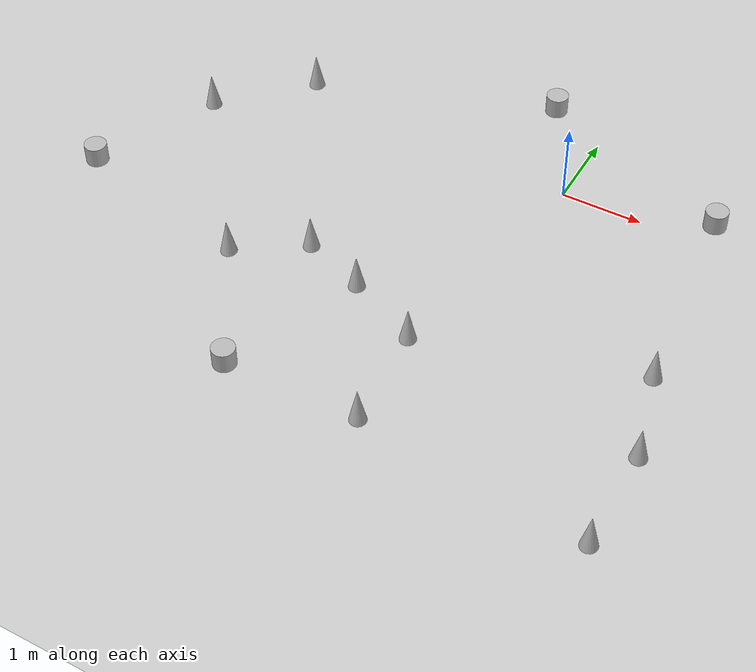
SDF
<?xml version="1.0" ?>
<sdf version="1.9">
  <world name="basic">
    <light name="sun" type="directional">
      <cast_shadows>1</cast_shadows>
      <pose>0 0 10 0 -0 0</pose>
      <diffuse>0.8 0.8 0.8 1</diffuse>
      <specular>0.2 0.2 0.2 1</specular>
      <attenuation>
        <range>1000</range>
        <constant>0.9</constant>
        <linear>0.01</linear>
        <quadratic>0.001</quadratic>
      </attenuation>
      <direction>-0.5 0.1 -0.9</direction>
      <spot>
        <inner_angle>0</inner_angle>
        <outer_angle>0</outer_angle>
        <falloff>0</falloff>
      </spot>
    </light>

    <model name="ground_plane">
      <static>1</static>
      <link name="link">
        <collision name="collision">
          <geometry>
            <plane>
              <normal>0 0 1</normal>
              <size>100 100</size>
            </plane>
          </geometry>
          <surface>
            <contact>
              <collide_bitmask>65535</collide_bitmask>
              <ode/>
            </contact>
            <friction>
              <ode>
                <mu>100</mu>
                <mu2>50</mu2>
              </ode>
              <torsional>
                <ode/>
              </torsional>
            </friction>
            <bounce/>
          </surface>
          <max_contacts>10</max_contacts>
        </collision>
        <visual name="visual">
          <cast_shadows>0</cast_shadows>
          <geometry>
            <plane>
              <normal>0 0 1</normal>
              <size>100 100</size>
            </plane>
          </geometry>
          <material>
            <script>
              <uri>file://media/materials/scripts/gazebo.material</uri>
              <name>Gazebo/Grey</name>
            </script>
          </material>
        </visual>
        <self_collide>0</self_collide>
        <enable_wind>0</enable_wind>
        <kinematic>0</kinematic>
      </link>
    </model>

    <gravity>0 0 -9.8</gravity>
    <magnetic_field>6e-06 2.3e-05 -4.2e-05</magnetic_field>
    <atmosphere type="adiabatic"/>
    <physics name="1ms" type="ode">
      <max_step_size>0.001</max_step_size>
      <real_time_factor>1.0</real_time_factor>
    </physics>

    <plugin
      filename="gz-sim-physics-system"
      name="gz::sim::systems::Physics">
    </plugin>

    <plugin
      filename="gz-sim-user-commands-system"
      name="gz::sim::systems::UserCommands">
    </plugin>

    <plugin
      filename="gz-sim-scene-broadcaster-system"
      name="gz::sim::systems::SceneBroadcaster">
    </plugin>

    <plugin
      filename="gz-sim-sensors-system"
      name="gz::sim::systems::Sensors">
      <render_engine>ogre2</render_engine>
    </plugin>

    <scene>
      <ambient>0.4 0.4 0.4 1</ambient>
      <background>0.7 0.7 0.7 1</background>
      <shadows>1</shadows>
    </scene>
    <wind/>
    <spherical_coordinates>
      <surface_model>EARTH_WGS84</surface_model>
      <latitude_deg>0</latitude_deg>
      <longitude_deg>0</longitude_deg>
      <elevation>0</elevation>
      <heading_deg>0</heading_deg>
    </spherical_coordinates>

    <include>
      <uri>model://construction_barrel</uri>
      <name>Construction Barrel</name>
      <pose>-0.756237 1.39226 0 0 -0 0</pose>
    </include>

    <include>
      <uri>model://construction_barrel</uri>
      <name>Construction Barrel_0</name>
      <pose>1.80022 0.377178 0 0 -0 0</pose>
    </include>

    <include>
      <uri>model://construction_barrel</uri>
      <name>Construction Barrel_1</name>
      <pose>-5.3108 -2.23708 0 0 -0 0</pose>
    </include>

    <include>
      <uri>model://construction_barrel</uri>
      <name>Construction Barrel_2</name>
      <pose>-2.07692 -4.26198 0 0 -0 0</pose>
    </include>

    <include>
      <uri>model://construction_cone</uri>
      <name>Construction Cone</name>
      <pose>-2.19745 -2.25046 0 0 -0 0</pose>
    </include>

    <include>
      <uri>model://construction_cone</uri>
      <name>Construction Cone_0</name>
      <pose>-1.40494 -2.55135 0 0 -0 0</pose>
    </include>

    <include>
      <uri>model://construction_cone</uri>
      <name>Construction Cone_1</name>
      <pose>-0.501986 -2.9745 0 0 -0 0</pose>
    </include>

    <include>
      <uri>model://construction_cone</uri>
      <name>Construction Cone_2</name>
      <pose>2.09724 -2.18232 0 0 -0 0</pose>
    </include>

    <include>
      <uri>model://construction_cone</uri>
      <name>Construction Cone_3</name>
      <pose>-3.69879 0.345038 0 0 -0 0</pose>
    </include>

    <include>
      <uri>model://construction_cone</uri>
      <name>Construction Cone_4</name>
      <pose>-0.406438 -4.23374 0 0 -0 0</pose>
    </include>

    <include>
      <uri>model://construction_cone</uri>
      <name>Construction Cone_5</name>
      <pose>2.38815 -3.2576 0 0 -0 0</pose>
    </include>

    <include>
      <uri>model://construction_cone</uri>
      <name>Construction Cone_6</name>
      <pose>2.39316 -4.49605 0 0 -0 0</pose>
    </include>

    <include>
      <uri>model://construction_cone</uri>
      <name>Construction Cone_7</name>
      <pose>-3.00495 -2.78053 0 0 -0 0</pose>
    </include>

    <include>
      <uri>model://construction_cone</uri>
      <name>Construction Cone_8</name>
      <pose>-4.64786 -0.646522 0 0 -0 0</pose>
    </include>
  </world>
</sdf>

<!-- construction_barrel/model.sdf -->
<sdf version="1.9">
  <model name="construction_barrel">
    <static>false</static>
    <link name="link">
      <inertial>
        <pose>0 0 0.25 0 0 0</pose>  <!-- z = length/2 -->
        <mass>500</mass>
        <inertia>
          <ixx>51.2096</ixx>
          <iyy>51.2096</iyy>
          <izz>25</izz>
          <ixy>0</ixy>
          <ixz>0</ixz>
          <iyz>0</iyz>
        </inertia>
      </inertial>
      <collision name="collision">
        <geometry>
          <cylinder>
            <radius>0.14</radius>  <!-- barrel radius -->
            <length>0.50</length>  <!-- barrel height -->
          </cylinder>
        </geometry>
        <max_contacts>10</max_contacts>
        <surface>
          <contact>
            <ode/>
          </contact>
          <bounce/>
          <friction>
            <torsional>
              <ode/>
            </torsional>
            <ode/>
          </friction>
        </surface>
      </collision>
      <visual name="visual">
        <geometry>
          <cylinder>
            <radius>0.14</radius>  <!-- barrel radius -->
            <length>0.50</length>  <!-- barrel height -->
          </cylinder>
        </geometry>
      </visual>
      <self_collide>0</self_collide>
      <enable_wind>0</enable_wind>
      <kinematic>0</kinematic>
    </link>
  </model>
</sdf>

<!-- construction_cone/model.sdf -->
<sdf version="1.9">
  <model name="construction_cone">
    <static>false</static>
    <link name="link">
      <inertial>
        <pose>0 0 0.45 0 0 0</pose>  <!-- z = length/2 -->
        <mass>1</mass>
        <inertia>
          <ixx>1</ixx>
          <iyy>1</iyy>
          <izz>1</izz>
          <ixy>0</ixy>
          <ixz>0</ixz>
          <iyz>0</iyz>
        </inertia>
      </inertial>
      <collision name="collision">
        <geometry>
          <cone>
            <radius>0.20</radius>  <!-- base radius -->
            <length>0.90</length>  <!-- cone height -->
          </cone>
        </geometry>
        <max_contacts>10</max_contacts>
        <surface>
          <contact>
            <ode/>
          </contact>
          <bounce/>
          <friction>
            <torsional>
              <ode/>
            </torsional>
            <ode/>
          </friction>
        </surface>
      </collision>
      <visual name="visual">
        <geometry>
          <cone>
            <radius>0.20</radius>  <!-- base radius -->
            <length>0.90</length>  <!-- cone height -->
          </cone>
        </geometry>
      </visual>
      <self_collide>0</self_collide>
      <enable_wind>0</enable_wind>
      <kinematic>0</kinematic>
    </link>
  </model>
</sdf>
